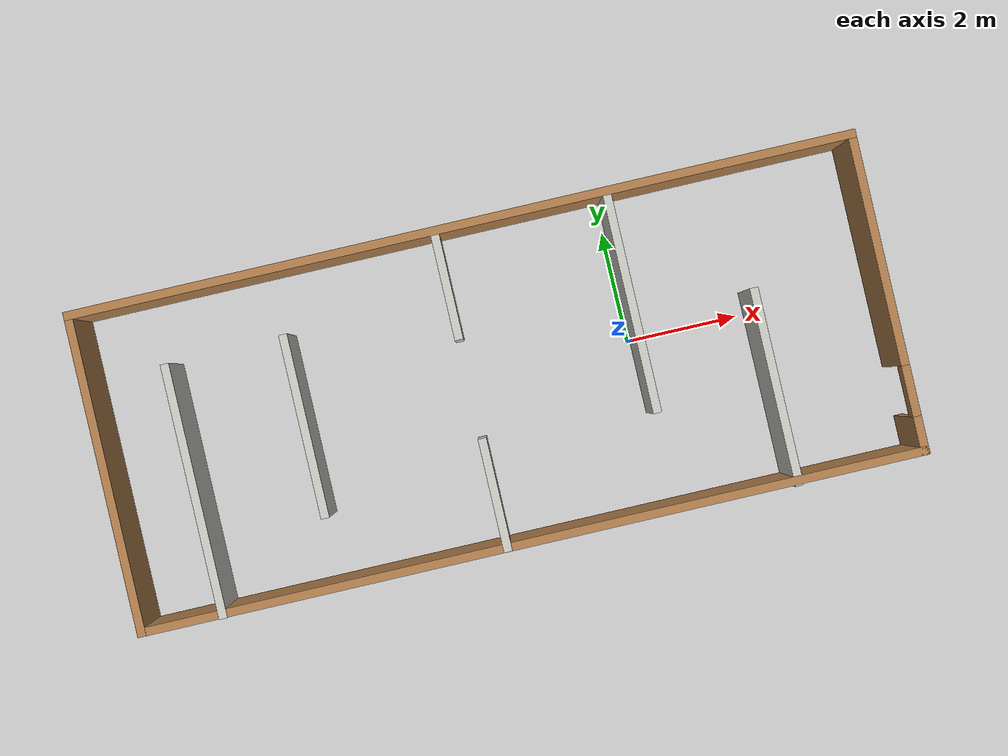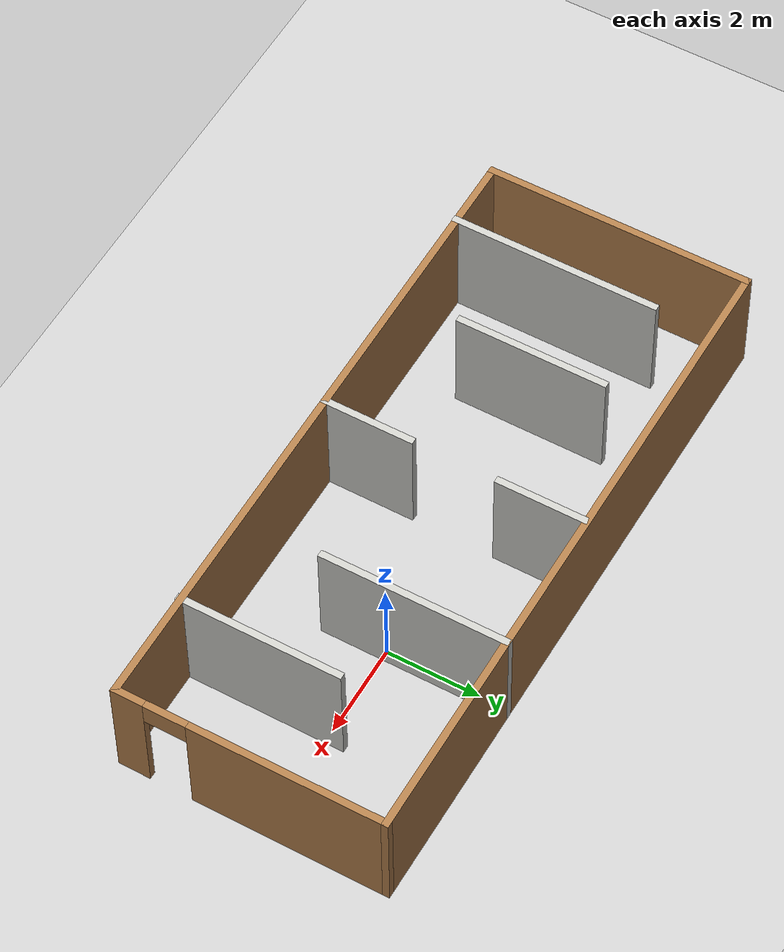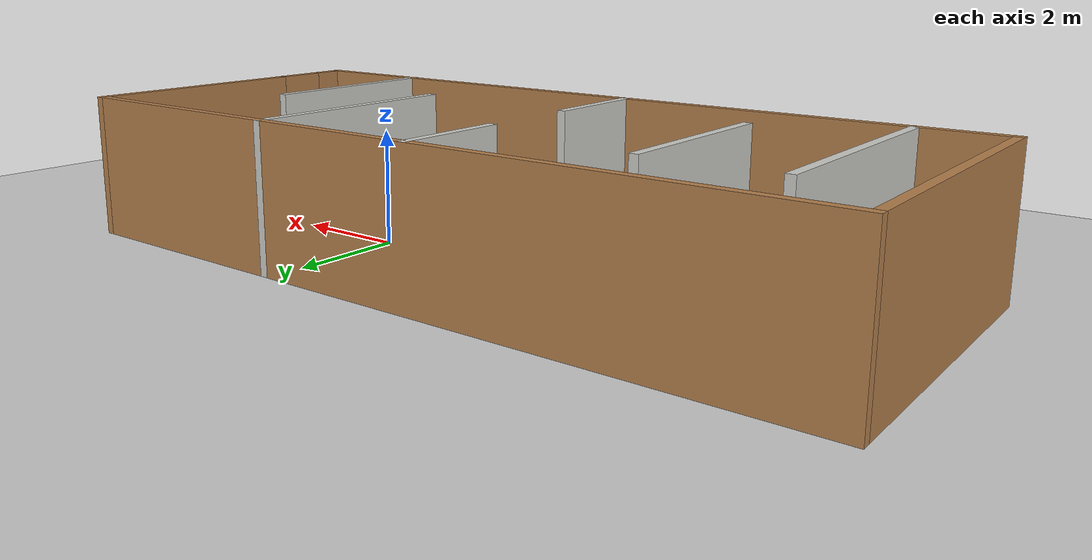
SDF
<sdf version='1.6'>
  <world name='default'>
    <plugin name='hello' filename='libhello.so'/>
    <light name='sun' type='directional'>
      <cast_shadows>1</cast_shadows>
      <pose frame=''>0 0 10 0 -0 0</pose>
      <diffuse>0.8 0.8 0.8 1</diffuse>
      <specular>0.1 0.1 0.1 1</specular>
      <attenuation>
        <range>1000</range>
        <constant>0.9</constant>
        <linear>0.01</linear>
        <quadratic>0.001</quadratic>
      </attenuation>
      <direction>-0.5 0.5 -1</direction>
    </light>
    <model name='ground_plane'>
      <static>1</static>
      <link name='link'>
        <collision name='collision'>
          <geometry>
            <plane>
              <normal>0 0 1</normal>
              <size>100 100</size>
            </plane>
          </geometry>
          <surface>
            <friction>
              <ode>
                <mu>100</mu>
                <mu2>50</mu2>
              </ode>
              <torsional>
                <ode/>
              </torsional>
            </friction>
            <contact>
              <ode/>
            </contact>
            <bounce/>
          </surface>
          <max_contacts>10</max_contacts>
        </collision>
        <visual name='visual'>
          <cast_shadows>0</cast_shadows>
          <geometry>
            <plane>
              <normal>0 0 1</normal>
              <size>100 100</size>
            </plane>
          </geometry>
          <material>
            <script>
              <uri>file://media/materials/scripts/gazebo.material</uri>
              <name>Gazebo/Grey</name>
            </script>
          </material>
        </visual>
        <self_collide>0</self_collide>
        <kinematic>0</kinematic>
        <gravity>1</gravity>
      </link>
    </model>
    <gravity>0 0 -9.8</gravity>
    <magnetic_field>6e-06 2.3e-05 -4.2e-05</magnetic_field>
    <atmosphere type='adiabatic'/>
    <physics name='default_physics' default='0' type='ode'>
      <max_step_size>0.001</max_step_size>
      <real_time_factor>1</real_time_factor>
      <real_time_update_rate>1000</real_time_update_rate>
    </physics>
    <scene>
      <ambient>0.4 0.4 0.4 1</ambient>
      <background>0.7 0.7 0.7 1</background>
      <shadows>1</shadows>
    </scene>
    <spherical_coordinates>
      <surface_model>EARTH_WGS84</surface_model>
      <latitude_deg>0</latitude_deg>
      <longitude_deg>0</longitude_deg>
      <elevation>0</elevation>
      <heading_deg>0</heading_deg>
    </spherical_coordinates>
  <model name='mazeworld'>
    <pose frame=''>-2.46782 -0.208265 0 0 -0 0</pose>
    <link name='Wall_0'>
      <collision name='Wall_0_Collision'>
        <geometry>
          <box>
            <size>14 0.15 2.5</size>
          </box>
        </geometry>
        <pose frame=''>0 0 1.25 0 -0 0</pose>
      </collision>
      <visual name='Wall_0_Visual'>
        <pose frame=''>0 0 1.25 0 -0 0</pose>
        <geometry>
          <box>
            <size>14 0.15 2.5</size>
          </box>
        </geometry>
        <material>
          <script>
            <uri>file://media/materials/scripts/gazebo.material</uri>
            <name>Gazebo/Wood</name>
          </script>
          <ambient>1 1 1 1</ambient>
        </material>
        <meta>
          <layer>0</layer>
        </meta>
      </visual>
      <pose frame=''>0 2.81185 0 0 -0 3.14159</pose>
    </link>
    <link name='Wall_1'>
      <collision name='Wall_1_Collision'>
        <geometry>
          <box>
            <size>5.75 0.15 2.5</size>
          </box>
        </geometry>
        <pose frame=''>0 0 1.25 0 -0 0</pose>
      </collision>
      <visual name='Wall_1_Visual'>
        <pose frame=''>0 0 1.25 0 -0 0</pose>
        <geometry>
          <box>
            <size>5.75 0.15 2.5</size>
          </box>
        </geometry>
        <material>
          <script>
            <uri>file://media/materials/scripts/gazebo.material</uri>
            <name>Gazebo/Wood</name>
          </script>
          <ambient>1 1 1 1</ambient>
        </material>
        <meta>
          <layer>0</layer>
        </meta>
      </visual>
      <pose frame=''>-6.925 0.011854 0 0 -0 -1.5708</pose>
    </link>
    <link name='Wall_11'>
      <collision name='Wall_11_Collision'>
        <geometry>
          <box>
            <size>2 0.15 2.5</size>
          </box>
        </geometry>
        <pose frame=''>0 0 1.25 0 -0 0</pose>
      </collision>
      <visual name='Wall_11_Visual'>
        <pose frame=''>0 0 1.25 0 -0 0</pose>
        <geometry>
          <box>
            <size>2 0.15 2.5</size>
          </box>
        </geometry>
        <material>
          <script>
            <uri>file://media/materials/scripts/gazebo.material</uri>
            <name>Gazebo/CeilingTiled</name>
          </script>
          <ambient>1 1 1 1</ambient>
        </material>
        <meta>
          <layer>0</layer>
        </meta>
      </visual>
      <pose frame=''>-0.455806 1.88685 0 0 -0 -1.5708</pose>
    </link>
    <link name='Wall_13'>
      <collision name='Wall_13_Collision'>
        <geometry>
          <box>
            <size>2 0.15 2.5</size>
          </box>
        </geometry>
        <pose frame=''>0 0 1.25 0 -0 0</pose>
      </collision>
      <visual name='Wall_13_Visual'>
        <pose frame=''>0 0 1.25 0 -0 0</pose>
        <geometry>
          <box>
            <size>2 0.15 2.5</size>
          </box>
        </geometry>
        <material>
          <script>
            <uri>file://media/materials/scripts/gazebo.material</uri>
            <name>Gazebo/CeilingTiled</name>
          </script>
          <ambient>1 1 1 1</ambient>
        </material>
        <meta>
          <layer>0</layer>
        </meta>
      </visual>
      <pose frame=''>-0.455806 -1.85997 0 0 -0 1.5708</pose>
    </link>
    <link name='Wall_15'>
      <collision name='Wall_15_Collision'>
        <geometry>
          <box>
            <size>3.25 0.15 2.5</size>
          </box>
        </geometry>
        <pose frame=''>0 0 1.25 0 -0 0</pose>
      </collision>
      <visual name='Wall_15_Visual'>
        <pose frame=''>0 0 1.25 0 -0 0</pose>
        <geometry>
          <box>
            <size>3.25 0.15 2.5</size>
          </box>
        </geometry>
        <material>
          <script>
            <uri>file://media/materials/scripts/gazebo.material</uri>
            <name>Gazebo/CeilingTiled</name>
          </script>
          <ambient>1 1 1 1</ambient>
        </material>
        <meta>
          <layer>0</layer>
        </meta>
      </visual>
      <pose frame=''>-3.39414 0.03755 0 0 -0 -1.5708</pose>
    </link>
    <link name='Wall_17'>
      <collision name='Wall_17_Collision'>
        <geometry>
          <box>
            <size>4.5 0.15 2.5</size>
          </box>
        </geometry>
        <pose frame=''>0 0 1.25 0 -0 0</pose>
      </collision>
      <visual name='Wall_17_Visual'>
        <pose frame=''>0 0 1.25 0 -0 0</pose>
        <geometry>
          <box>
            <size>4.5 0.15 2.5</size>
          </box>
        </geometry>
        <material>
          <script>
            <uri>file://media/materials/scripts/gazebo.material</uri>
            <name>Gazebo/CeilingTiled</name>
          </script>
          <ambient>1 1 1 1</ambient>
        </material>
        <meta>
          <layer>0</layer>
        </meta>
      </visual>
      <pose frame=''>-5.49294 -0.62243 0 0 -0 -1.5708</pose>
    </link>
    <link name='Wall_2'>
      <collision name='Wall_2_Collision'>
        <geometry>
          <box>
            <size>14 0.15 2.5</size>
          </box>
        </geometry>
        <pose frame=''>0 0 1.25 0 -0 0</pose>
      </collision>
      <visual name='Wall_2_Visual'>
        <pose frame=''>0 0 1.25 0 -0 0</pose>
        <geometry>
          <box>
            <size>14 0.15 2.5</size>
          </box>
        </geometry>
        <material>
          <script>
            <uri>file://media/materials/scripts/gazebo.material</uri>
            <name>Gazebo/Wood</name>
          </script>
          <ambient>1 1 1 1</ambient>
        </material>
        <meta>
          <layer>0</layer>
        </meta>
      </visual>
      <pose frame=''>0 -2.78815 0 0 -0 0</pose>
    </link>
    <link name='Wall_3'>
      <pose frame=''>6.925 0.011854 0 0 -0 1.5708</pose>
      <visual name='Wall_3_Visual_0'>
        <pose frame=''>-2.53194 0 1.25 0 -0 0</pose>
        <geometry>
          <box>
            <size>0.686116 0.15 2.5</size>
          </box>
        </geometry>
        <material>
          <script>
            <uri>file://media/materials/scripts/gazebo.material</uri>
            <name>Gazebo/Wood</name>
          </script>
          <ambient>1 1 1 1</ambient>
        </material>
        <meta>
          <layer>0</layer>
        </meta>
      </visual>
      <collision name='Wall_3_Collision_0'>
        <geometry>
          <box>
            <size>0.686116 0.15 2.5</size>
          </box>
        </geometry>
        <pose frame=''>-2.53194 0 1.25 0 -0 0</pose>
      </collision>
      <visual name='Wall_3_Visual_1'>
        <pose frame=''>0.793058 0 1.25 0 -0 0</pose>
        <geometry>
          <box>
            <size>4.16388 0.15 2.5</size>
          </box>
        </geometry>
        <material>
          <script>
            <uri>file://media/materials/scripts/gazebo.material</uri>
            <name>Gazebo/Wood</name>
          </script>
          <ambient>1 1 1 1</ambient>
        </material>
        <meta>
          <layer>0</layer>
        </meta>
      </visual>
      <collision name='Wall_3_Collision_1'>
        <geometry>
          <box>
            <size>4.16388 0.15 2.5</size>
          </box>
        </geometry>
        <pose frame=''>0.793058 0 1.25 0 -0 0</pose>
      </collision>
      <visual name='Wall_3_Visual_2'>
        <pose frame=''>-1.73888 0 2.25 0 -0 0</pose>
        <geometry>
          <box>
            <size>0.9 0.15 0.5</size>
          </box>
        </geometry>
        <material>
          <script>
            <uri>file://media/materials/scripts/gazebo.material</uri>
            <name>Gazebo/Wood</name>
          </script>
          <ambient>1 1 1 1</ambient>
        </material>
        <meta>
          <layer>0</layer>
        </meta>
      </visual>
      <collision name='Wall_3_Collision_2'>
        <geometry>
          <box>
            <size>0.9 0.15 0.5</size>
          </box>
        </geometry>
        <pose frame=''>-1.73888 0 2.25 0 -0 0</pose>
      </collision>
    </link>
    <link name='Wall_7'>
      <collision name='Wall_7_Collision'>
        <geometry>
          <box>
            <size>3.5 0.15 2.5</size>
          </box>
        </geometry>
        <pose frame=''>0 0 1.25 0 -0 0</pose>
      </collision>
      <visual name='Wall_7_Visual'>
        <pose frame=''>0 0 1.25 0 -0 0</pose>
        <geometry>
          <box>
            <size>3.5 0.15 2.5</size>
          </box>
        </geometry>
        <material>
          <script>
            <uri>file://media/materials/scripts/gazebo.material</uri>
            <name>Gazebo/CeilingTiled</name>
          </script>
          <ambient>1 1 1 1</ambient>
        </material>
        <meta>
          <layer>0</layer>
        </meta>
      </visual>
      <pose frame=''>4.68627 -1.13685 0 0 -0 -1.5708</pose>
    </link>
    <link name='Wall_9'>
      <collision name='Wall_9_Collision'>
        <geometry>
          <box>
            <size>4 0.15 2.5</size>
          </box>
        </geometry>
        <pose frame=''>0 0 1.25 0 -0 0</pose>
      </collision>
      <visual name='Wall_9_Visual'>
        <pose frame=''>0 0 1.25 0 -0 0</pose>
        <geometry>
          <box>
            <size>4 0.15 2.5</size>
          </box>
        </geometry>
        <material>
          <script>
            <uri>file://media/materials/scripts/gazebo.material</uri>
            <name>Gazebo/CeilingTiled</name>
          </script>
          <ambient>1 1 1 1</ambient>
        </material>
        <meta>
          <layer>0</layer>
        </meta>
      </visual>
      <pose frame=''>2.58746 0.886854 0 0 -0 -1.5708</pose>
    </link>
    <static>1</static>
  </model>
  </world>
</sdf>
